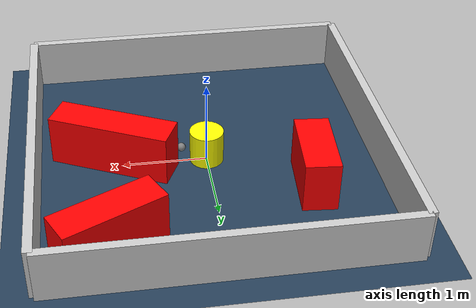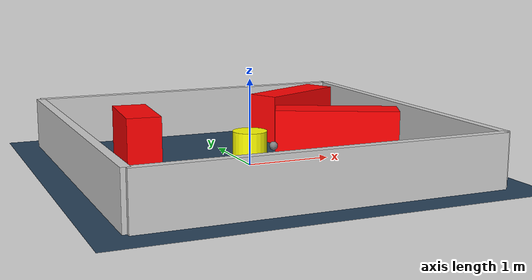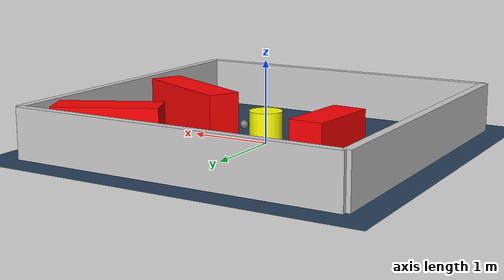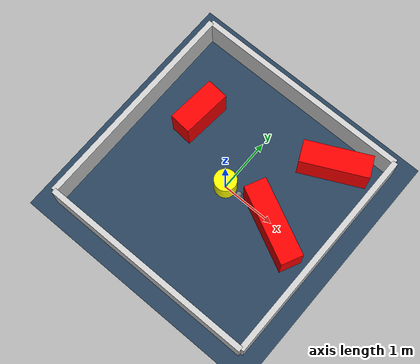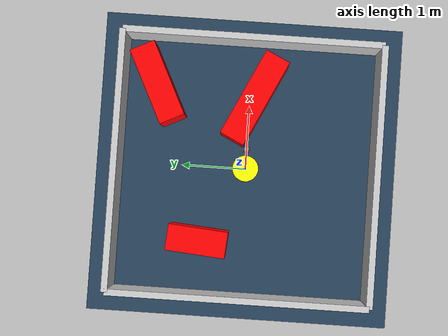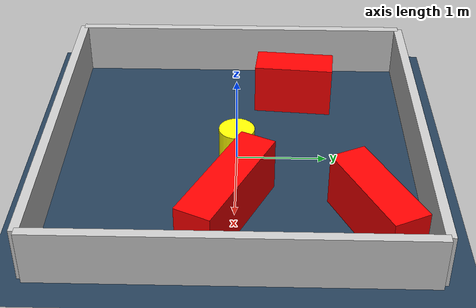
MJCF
<?xml version="1.0" ?>
<mujoco model="generated_environment">
  <option timestep="0.01" integrator="RK4" cone="elliptic"/>
  <default>
    <geom density="1"/>
  </default>
  <asset>
    <texture builtin="gradient" height="3072" rgb1="0.3 0.5 0.7" rgb2="0 0 0" type="skybox" width="512"/>
    <texture builtin="checker" height="300" mark="edge" markrgb="0.8 0.8 0.8" name="groundplane" rgb1="0.2 0.3 0.4" rgb2="0.1 0.2 0.3" type="2d" width="300"/>
    <material name="groundplane" reflectance="0.2" texrepeat="5 5" texture="groundplane" texuniform="true"/>
    <material name="robot" rgba="0.0 1.0 0.0 1"/>
  </asset>
  <worldbody>
    <light dir="0 0 -1" directional="true" pos="0 0 1.5"/>
    <geom condim="4" friction="1.0 0.005 0.001" material="groundplane" name="floor" size="0 0 0.05" type="plane"/>
    <body name="walls">
      <geom name="wall_1" condim="4" pos="-2.0 0.0 0.3" rgba="0.800000011920929 0.800000011920929 0.800000011920929 1.0" size="0.05 2.0 0.3" type="box"/>
      <geom name="wall_2" condim="4" pos="2.0 0.0 0.3" rgba="0.800000011920929 0.800000011920929 0.800000011920929 1.0" size="0.05 2.0 0.3" type="box"/>
      <geom name="wall_3" condim="4" pos="0.0 -2.0 0.3" rgba="0.800000011920929 0.800000011920929 0.800000011920929 1.0" size="2.0 0.05 0.3" type="box"/>
      <geom name="wall_4" condim="4" pos="0.0 2.0 0.3" rgba="0.800000011920929 0.800000011920929 0.800000011920929 1.0" size="2.0 0.05 0.3" type="box"/>
    </body>
    <body name="robot">
      <joint name="joint_x" type="slide" pos="0 0 0" axis="1 0 0"/>
      <joint name="joint_y" type="slide" pos="0 0 0" axis="0 1 0"/>
      <geom name="robot" type="sphere" pos="0.3 0.0 0.2" size="0.05" mass="5." friction="1.0 0.005 0.0001" condim="4" rgba="0.5 0.5 0.5 1.0"/>
      <site name="sensor_ball"/>
    </body>
    <body name="obstacle_movable_1">
      <geom name="obstacle_movable_1" condim="4" pos="0.0 0.0 0.2" euler="0 0 0.0" friction="1.0 0.005 0.001" rgba="1.0 1.0 0.0 1.0" size="0.2 0.2 0.0" type="cylinder" mass="0.1"/>
      <joint type="free"/>
    </body>
    <body name="obstacle_2_static">
      <geom name="obstacle_2_static" condim="4" pos="-1.1467029518243381 0.6629762331185003 0.3" euler="0 0 265.1864105575001" friction="1.0 0.005 0.001" rgba="1 0 0 1" size="0.45405971777943543 0.2 0.3" type="box"/>
    </body>
    <body name="obstacle_3_static">
      <geom name="obstacle_3_static" condim="4" pos="1.214968435785479 1.424011967245513 0.3" euler="0 0 205.99618457053054" friction="1.0 0.005 0.001" rgba="1 0 0 1" size="0.605083448236241 0.2 0.3" type="box"/>
    </body>
    <body name="obstacle_4_static">
      <geom name="obstacle_4_static" condim="4" pos="1.0797899550271346 -0.07431816406985492 0.3" euler="0 0 154.25368069060187" friction="1.0 0.005 0.001" rgba="1 0 0 1" size="0.7194021284311178 0.2 0.3" type="box"/>
    </body>
  </worldbody>
  <actuator>
    <motor name="actuator_x" joint="joint_x" gear="1" ctrlrange="-1 1"/>
    <motor name="actuator_y" joint="joint_y" gear="1" ctrlrange="-1 1"/>
  </actuator>
</mujoco>
